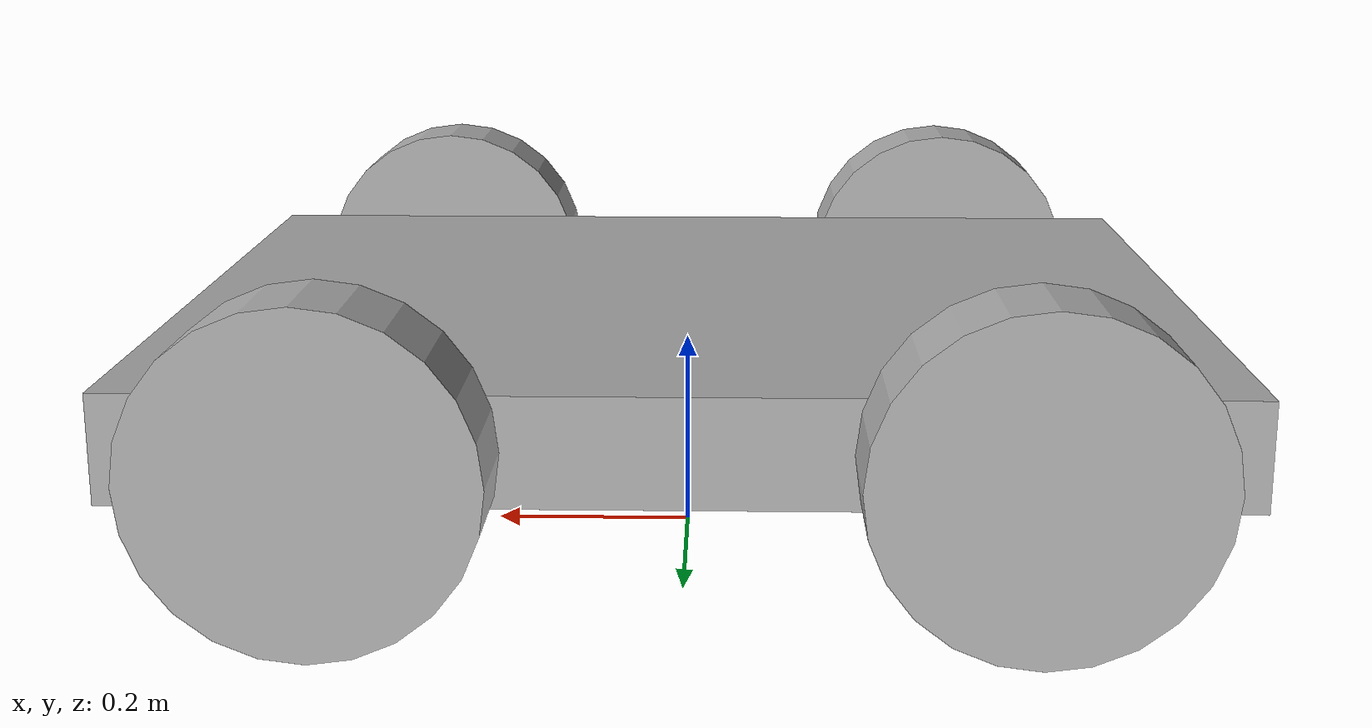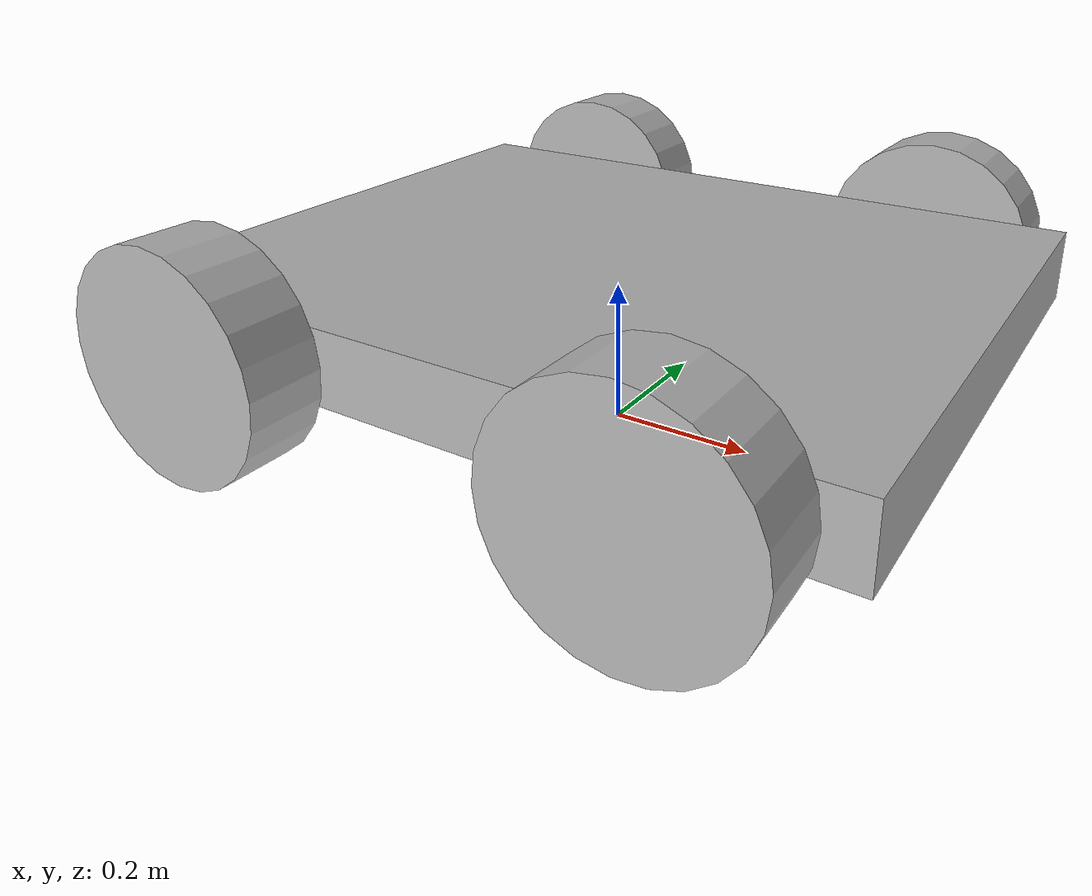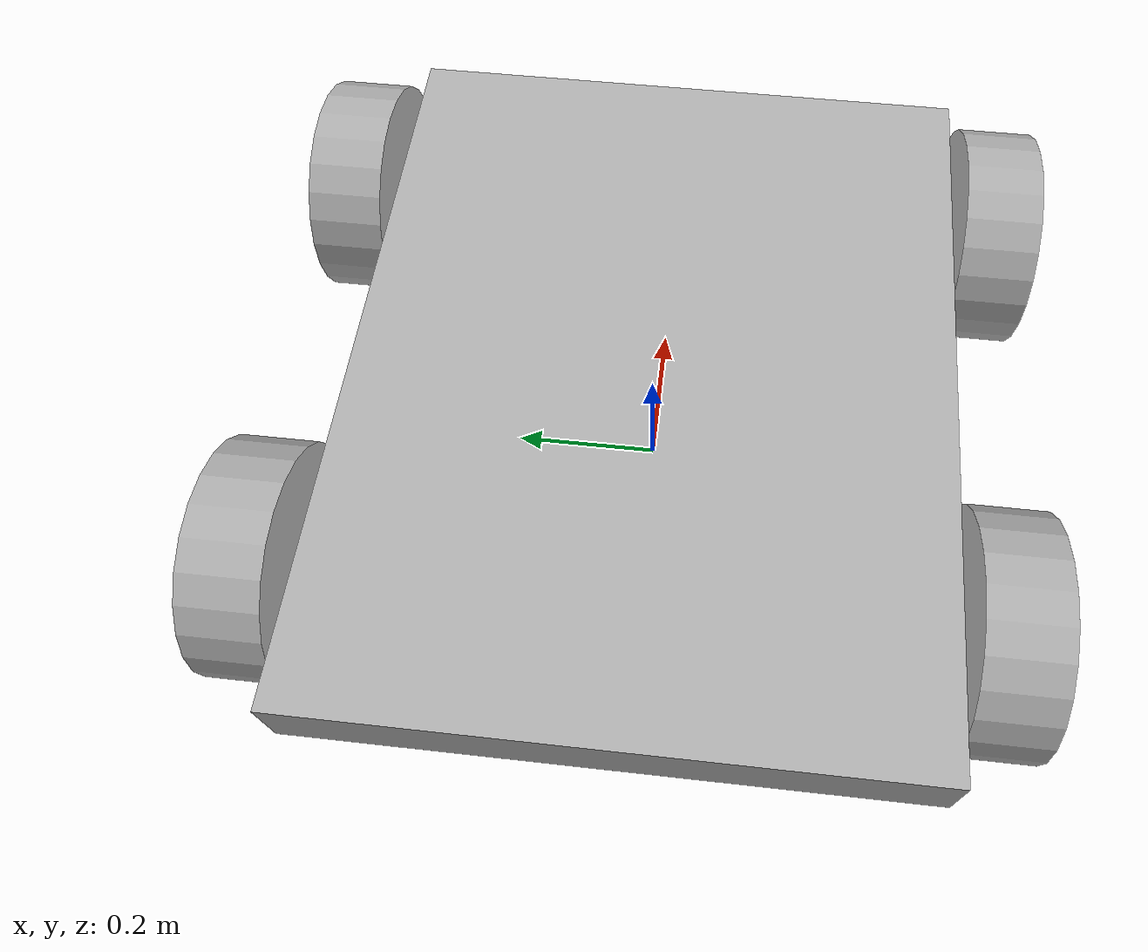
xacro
<?xml version="1.0"?>
<robot xmlns:xacro="http://www.ros.org/wiki/xacro" name="multishape">

  <link name="base_footprint"/>

  <link name="base_link">
    <visual>
      <geometry>
        <box size="1.0 0.8 0.1"/>
      </geometry>
      <material name="LightGrey">
        <color rgba="0.7 0.7 0.7 1.0"/>
      </material>
    </visual>
    <collision>
      <geometry>
        <box size="1.0 0.8 0.1"/>
      </geometry>
    </collision>
    <inertial>
      <mass value="1.0"/>
      <origin xyz="0.0 0.0 0.0" rpy="0.0 0.0 0.0"/>
      <inertia ixx="0.1" ixy="0.0" ixz="0.0" iyy="0.1" iyz="0.0" izz="0.1"/>
    </inertial>
  </link>

  <joint name="base_joint" type="fixed">
    <origin xyz="0.0 0.0 0.2" rpy="0.0 0.0 0.0"/>
    <parent link="base_footprint"/>
    <child link="base_link"/>
  </joint>

  <xacro:macro name="wheel" params="name x y">
    <link name="wheel_${name}_link">
      <visual>
        <geometry>
          <cylinder radius="0.15" length="0.1"/>
        </geometry>
        <material name="LightGrey">
          <color rgba="0.7 0.7 0.7 1.0"/>
        </material>
      </visual>
      <collision>
        <geometry>
          <cylinder radius="0.15" length="0.1"/>
        </geometry>
      </collision>
      <inertial>
        <mass value="0.55"/>
        <origin xyz="0.0 0.0 0.0" rpy="0.0 0.0 0.0"/>
        <inertia ixx="0.01" ixy="0.0" ixz="0.0" iyy="0.01" iyz="0.0" izz="0.01"/>
      </inertial>
    </link>

    <joint name="wheel_${name}_joint" type="continuous">
      <origin xyz="${x} ${y} 0.0" rpy="1.570796326795 0.0 0.0"/>
      <parent link="base_link"/>
      <child link="wheel_${name}_link"/>
      <axis xyz="0.0 0.0 1.0"/>
    </joint>
  </xacro:macro>

  <xacro:wheel name="front_right" x="0.3" y="0.45"/>
  <xacro:wheel name="rear_right" x="-0.3" y="0.45"/>
  <xacro:wheel name="rear_left" x="-0.3" y="-0.45"/>
  <xacro:wheel name="front_left" x="0.3" y="-0.45"/>

<gazebo>
  <plugin name="skid_steer_drive_controller" filename="libgazebo_ros_skid_steer_drive.so">
    <updateRate>100.0</updateRate>
    <robotNamespace>/</robotNamespace>
    <leftFrontJoint>wheel_front_left_joint</leftFrontJoint>
    <rightFrontJoint>wheel_front_right_joint</rightFrontJoint>
    <leftRearJoint>wheel_rear_left_joint</leftRearJoint>
    <rightRearJoint>wheel_rear_right_joint</rightRearJoint>
    <wheelSeparation>0.4</wheelSeparation>
    <wheelDiameter>0.3</wheelDiameter>
    <robotBaseFrame>base_link</robotBaseFrame>
    <torque>5</torque>
    <topicName>cmd_vel</topicName>
    <broadcastTF>false</broadcastTF>
  </plugin>
</gazebo>

</robot>
